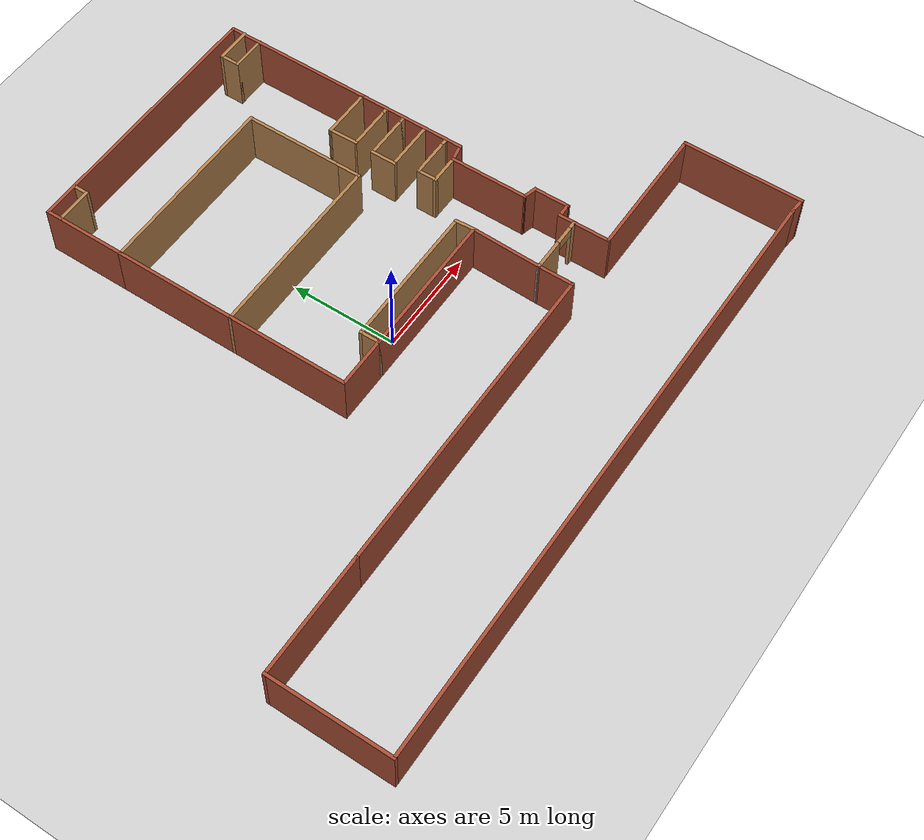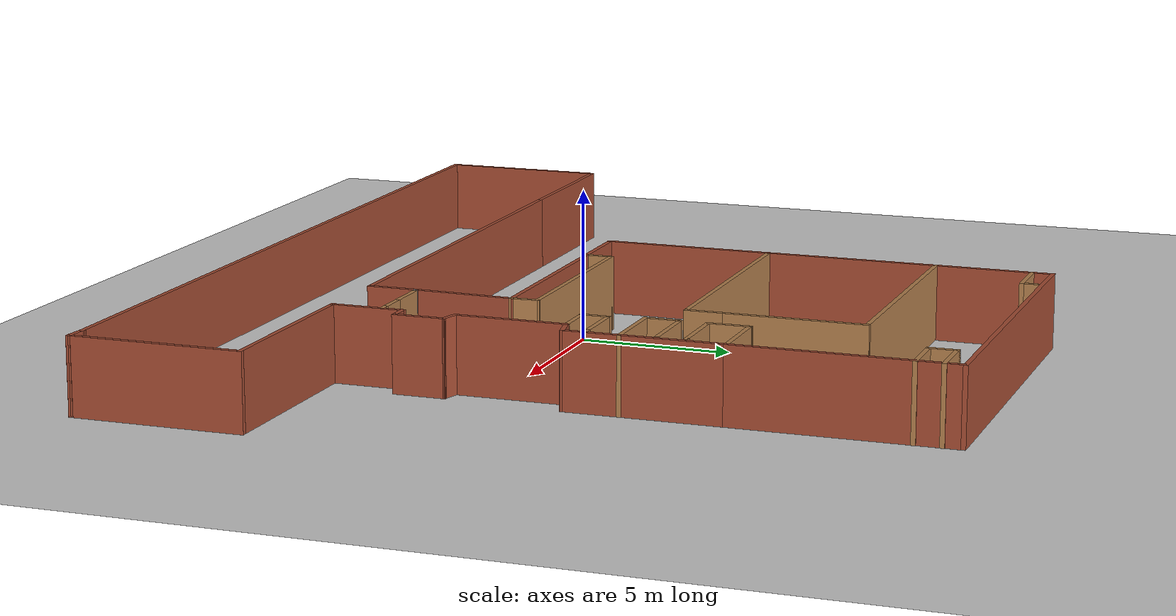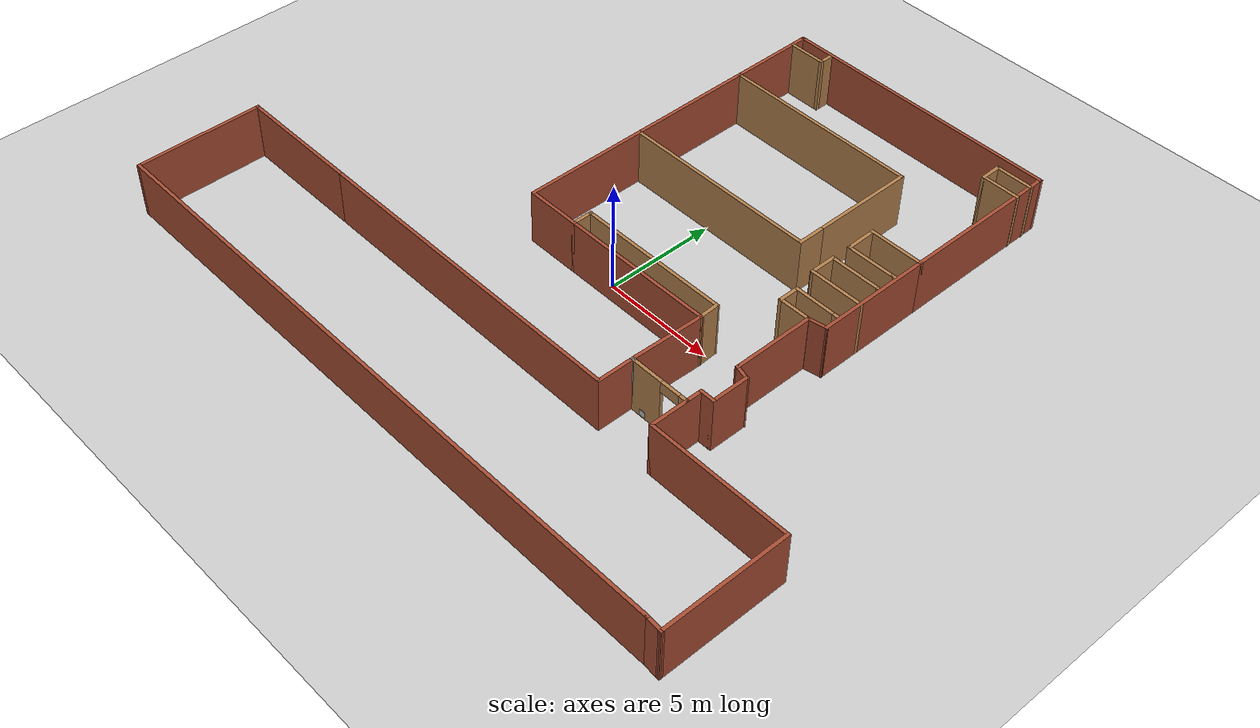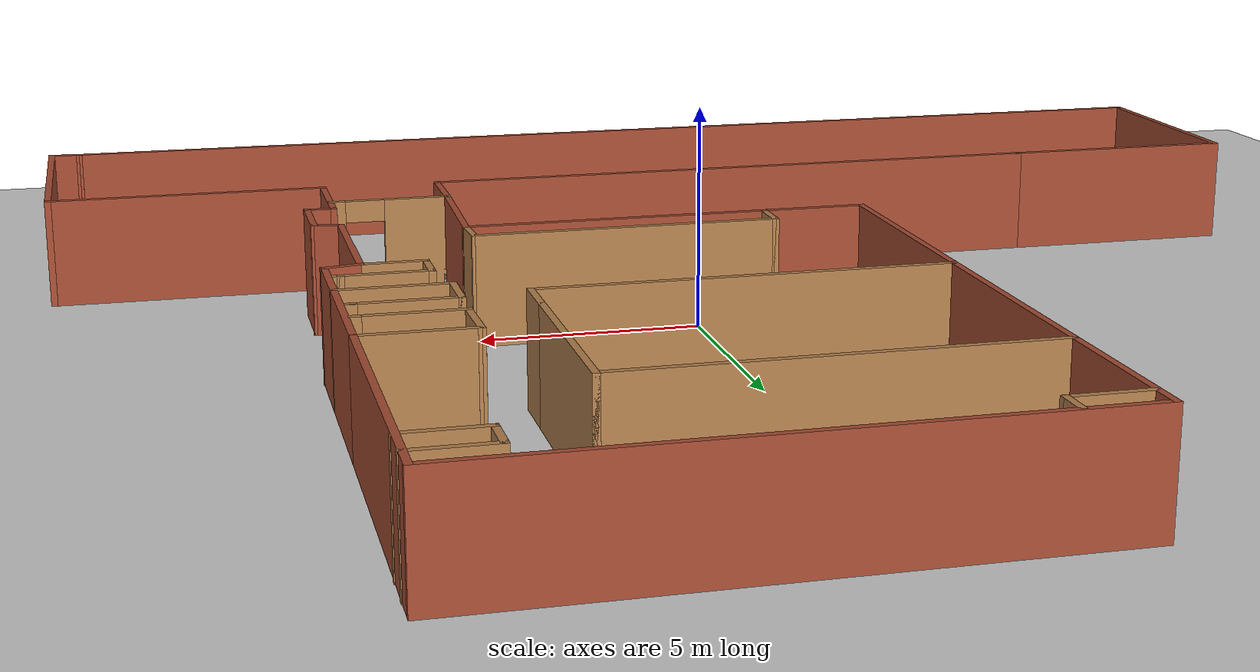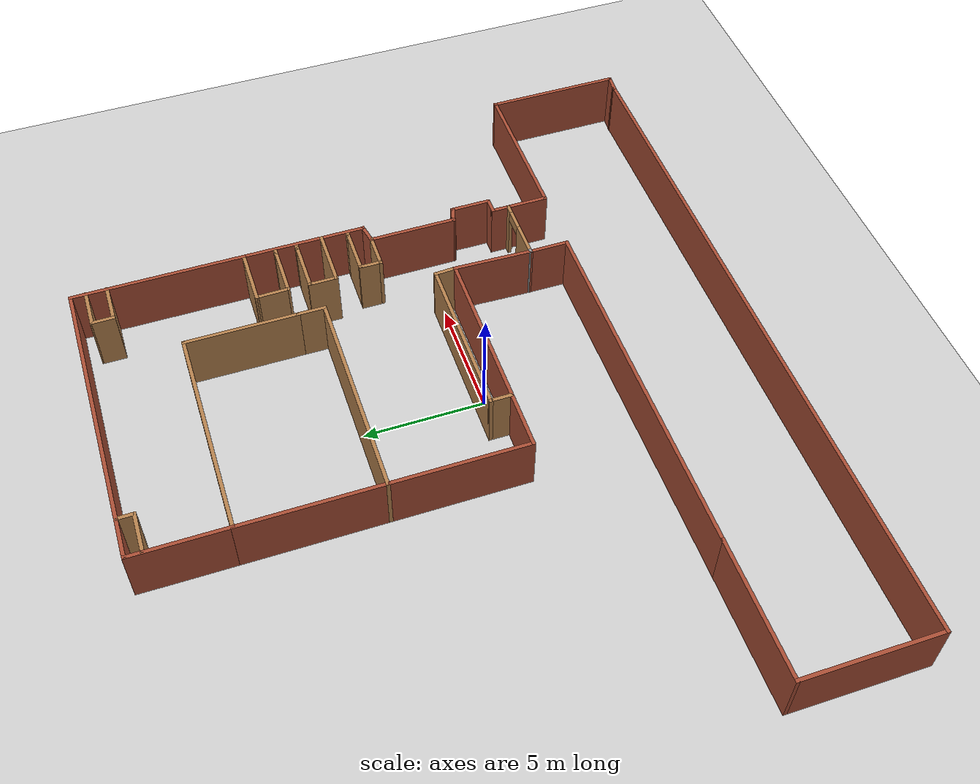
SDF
<sdf version="1.7">
 <world name="default">
  <light name="sun" type="directional">
   <pose>0 0 10 0 -0 0</pose>
   <diffuse>0.8 0.8 0.8 1</diffuse>
   <specular>0.2 0.2 0.2 1</specular>
   <attenuation>
    <range>1000</range>
    <constant>0.9</constant>
    <linear>0.01</linear>
    <quadratic>0.001</quadratic>
   </attenuation>
   <direction>-0.5 0.1 -0.9</direction>
   <spot><inner_angle>0</inner_angle><outer_angle>0</outer_angle><falloff>0</falloff></spot>
  </light>
  <model name="ground_plane">
   <static>1</static>
   <link name="link">
    <collision name="collision">
     <geometry><plane><normal>0 0 1</normal><size>100 100</size></plane></geometry>
     <surface><friction><ode><mu>100</mu><mu2>50</mu2></ode></friction></surface>
    </collision>
    <visual name="visual">
     <cast_shadows>0</cast_shadows>
     <geometry><plane><normal>0 0 1</normal><size>100 100</size></plane></geometry>
     <material>
      <script><uri>file://media/materials/scripts/gazebo.material</uri><name>Gazebo/Grey</name></script>
     </material>
    </visual>
   </link>
  </model>
  <gravity>0 0 -9.8</gravity>
  <magnetic_field>6e-06 2.3e-05 -4.2e-05</magnetic_field>
  <atmosphere type="adiabatic"/>
  <physics type="ode">
   <max_step_size>0.001</max_step_size>
   <real_time_factor>1</real_time_factor>
   <real_time_update_rate>1000</real_time_update_rate>
  </physics>
  <scene><ambient>0.4 0.4 0.4 1</ambient><background>0.7 0.7 0.7 1</background><shadows>1</shadows></scene>
  <spherical_coordinates>
   <surface_model>EARTH_WGS84</surface_model>
   <latitude_deg>0</latitude_deg>
   <longitude_deg>0</longitude_deg>
   <elevation>0</elevation>
   <heading_deg>0</heading_deg>
  </spherical_coordinates>
  <model name="F1L3_1">
   <pose>-0.71829 1.81136 0 0 -0 0</pose>
   <link name="Wall_100">
    <collision name="Wall_100_Collision">
     <geometry><box><size>0.75 0.15 2.5</size></box></geometry>
     <pose>0 0 1.25 0 -0 0</pose>
    </collision>
    <visual name="Wall_100_Visual">
     <pose>0 0 1.25 0 -0 0</pose>
     <geometry><box><size>0.75 0.15 2.5</size></box></geometry>
     <material>
      <script><uri>file://media/materials/scripts/gazebo.material</uri><name>Gazebo/Bricks</name></script>
      <ambient>1 1 1 1</ambient>
     </material>
     <meta><layer>0</layer></meta>
    </visual>
    <pose>8.83686 -4.87473 0 0 -0 0</pose>
   </link>
   <link name="Wall_101">
    <collision name="Wall_101_Collision">
     <geometry><box><size>1.75 0.15 2.5</size></box></geometry>
     <pose>0 0 1.25 0 -0 0</pose>
    </collision>
    <visual name="Wall_101_Visual">
     <pose>0 0 1.25 0 -0 0</pose>
     <geometry><box><size>1.75 0.15 2.5</size></box></geometry>
     <material>
      <script><uri>file://media/materials/scripts/gazebo.material</uri><name>Gazebo/Bricks</name></script>
      <ambient>1 1 1 1</ambient>
     </material>
     <meta><layer>0</layer></meta>
    </visual>
    <pose>9.13686 -4.07473 0 0 -0 1.5708</pose>
   </link>
   <link name="Wall_102">
    <collision name="Wall_102_Collision">
     <geometry><box><size>0.75 0.15 2.5</size></box></geometry>
     <pose>0 0 1.25 0 -0 0</pose>
    </collision>
    <visual name="Wall_102_Visual">
     <pose>0 0 1.25 0 -0 0</pose>
     <geometry><box><size>0.75 0.15 2.5</size></box></geometry>
     <material>
      <script><uri>file://media/materials/scripts/gazebo.material</uri><name>Gazebo/Bricks</name></script>
      <ambient>1 1 1 1</ambient>
     </material>
     <meta><layer>0</layer></meta>
    </visual>
    <pose>8.84708 -3.19708 0 0 -0 2.87979</pose>
   </link>
   <link name="Wall_103">
    <collision name="Wall_103_Collision">
     <geometry><box><size>3.75 0.15 2.5</size></box></geometry>
     <pose>0 0 1.25 0 -0 0</pose>
    </collision>
    <visual name="Wall_103_Visual">
     <pose>0 0 1.25 0 -0 0</pose>
     <geometry><box><size>3.75 0.15 2.5</size></box></geometry>
     <material>
      <script><uri>file://media/materials/scripts/gazebo.material</uri><name>Gazebo/Bricks</name></script>
      <ambient>1 1 1 1</ambient>
     </material>
     <meta><layer>0</layer></meta>
    </visual>
    <pose>8.5573 -1.31944 0 0 -0 1.5708</pose>
   </link>
   <link name="Wall_104">
    <collision name="Wall_104_Collision">
     <geometry><box><size>1.5 0.15 2.5</size></box></geometry>
     <pose>0 0 1.25 0 -0 0</pose>
    </collision>
    <visual name="Wall_104_Visual">
     <pose>0 0 1.25 0 -0 0</pose>
     <geometry><box><size>1.5 0.15 2.5</size></box></geometry>
     <material>
      <script><uri>file://media/materials/scripts/gazebo.material</uri><name>Gazebo/Wood</name></script>
      <ambient>1 1 1 1</ambient>
     </material>
     <meta><layer>0</layer></meta>
    </visual>
    <pose>7.8823 0.480563 0 0 -0 3.14159</pose>
   </link>
   <link name="Wall_105">
    <collision name="Wall_105_Collision">
     <geometry><box><size>1 0.15 2.5</size></box></geometry>
     <pose>0 0 1.25 0 -0 0</pose>
    </collision>
    <visual name="Wall_105_Visual">
     <pose>0 0 1.25 0 -0 0</pose>
     <geometry><box><size>1 0.15 2.5</size></box></geometry>
     <material>
      <script><uri>file://media/materials/scripts/gazebo.material</uri><name>Gazebo/Wood</name></script>
      <ambient>1 1 1 1</ambient>
     </material>
     <meta><layer>0</layer></meta>
    </visual>
    <pose>7.2073 0.905563 0 0 -0 1.5708</pose>
   </link>
   <link name="Wall_106">
    <collision name="Wall_106_Collision">
     <geometry><box><size>2 0.15 2.5</size></box></geometry>
     <pose>0 0 1.25 0 -0 0</pose>
    </collision>
    <visual name="Wall_106_Visual">
     <pose>0 0 1.25 0 -0 0</pose>
     <geometry><box><size>2 0.15 2.5</size></box></geometry>
     <material>
      <script><uri>file://media/materials/scripts/gazebo.material</uri><name>Gazebo/Wood</name></script>
      <ambient>1 1 1 1</ambient>
     </material>
     <meta><layer>0</layer></meta>
    </visual>
    <pose>8.13231 1.33056 0 0 -0 0</pose>
   </link>
   <link name="Wall_108">
    <collision name="Wall_108_Collision">
     <geometry><box><size>2.5 0.15 2.5</size></box></geometry>
     <pose>0 0 1.25 0 -0 0</pose>
    </collision>
    <visual name="Wall_108_Visual">
     <pose>0 0 1.25 0 -0 0</pose>
     <geometry><box><size>2.5 0.15 2.5</size></box></geometry>
     <material>
      <script><uri>file://media/materials/scripts/gazebo.material</uri><name>Gazebo/Wood</name></script>
      <ambient>1 1 1 1</ambient>
     </material>
     <meta><layer>0</layer></meta>
    </visual>
    <pose>8.13231 2.43056 0 0 -0 3.14159</pose>
   </link>
   <link name="Wall_109">
    <collision name="Wall_109_Collision">
     <geometry><box><size>1.25 0.15 2.5</size></box></geometry>
     <pose>0 0 1.25 0 -0 0</pose>
    </collision>
    <visual name="Wall_109_Visual">
     <pose>0 0 1.25 0 -0 0</pose>
     <geometry><box><size>1.25 0.15 2.5</size></box></geometry>
     <material>
      <script><uri>file://media/materials/scripts/gazebo.material</uri><name>Gazebo/Wood</name></script>
      <ambient>1 1 1 1</ambient>
     </material>
     <meta><layer>0</layer></meta>
    </visual>
    <pose>6.9573 2.98056 0 0 -0 1.5708</pose>
   </link>
   <link name="Wall_110">
    <collision name="Wall_110_Collision">
     <geometry><box><size>2.25 0.15 2.5</size></box></geometry>
     <pose>0 0 1.25 0 -0 0</pose>
    </collision>
    <visual name="Wall_110_Visual">
     <pose>0 0 1.25 0 -0 0</pose>
     <geometry><box><size>2.25 0.15 2.5</size></box></geometry>
     <material>
      <script><uri>file://media/materials/scripts/gazebo.material</uri><name>Gazebo/Wood</name></script>
      <ambient>1 1 1 1</ambient>
     </material>
     <meta><layer>0</layer></meta>
    </visual>
    <pose>8.00731 3.53056 0 0 -0 0</pose>
   </link>
   <link name="Wall_112">
    <collision name="Wall_112_Collision">
     <geometry><box><size>2.25 0.15 2.5</size></box></geometry>
     <pose>0 0 1.25 0 -0 0</pose>
    </collision>
    <visual name="Wall_112_Visual">
     <pose>0 0 1.25 0 -0 0</pose>
     <geometry><box><size>2.25 0.15 2.5</size></box></geometry>
     <material>
      <script><uri>file://media/materials/scripts/gazebo.material</uri><name>Gazebo/Wood</name></script>
      <ambient>1 1 1 1</ambient>
     </material>
     <meta><layer>0</layer></meta>
    </visual>
    <pose>8.03044 4.42682 0 0 -0 3.14159</pose>
   </link>
   <link name="Wall_113">
    <collision name="Wall_113_Collision">
     <geometry><box><size>1.43082 0.15 2.5</size></box></geometry>
     <pose>0 0 1.25 0 -0 0</pose>
    </collision>
    <visual name="Wall_113_Visual">
     <pose>0 0 1.25 0 -0 0</pose>
     <geometry><box><size>1.43082 0.15 2.5</size></box></geometry>
     <material>
      <script><uri>file://media/materials/scripts/gazebo.material</uri><name>Gazebo/Wood</name></script>
      <ambient>1 1 1 1</ambient>
     </material>
     <meta><layer>0</layer></meta>
    </visual>
    <pose>6.96887 5.09026 0 0 -0 1.58886</pose>
   </link>
   <link name="Wall_119">
    <collision name="Wall_119_Collision">
     <geometry><box><size>2.5 0.15 2.5</size></box></geometry>
     <pose>0 0 1.25 0 -0 0</pose>
    </collision>
    <visual name="Wall_119_Visual">
     <pose>0 0 1.25 0 -0 0</pose>
     <geometry><box><size>2.5 0.15 2.5</size></box></geometry>
     <material>
      <script><uri>file://media/materials/scripts/gazebo.material</uri><name>Gazebo/Wood</name></script>
      <ambient>1 1 1 1</ambient>
     </material>
     <meta><layer>0</layer></meta>
    </visual>
    <pose>8.13231 5.73056 0 0 -0 0</pose>
   </link>
   <link name="Wall_121">
    <collision name="Wall_121_Collision">
     <geometry><box><size>7.25 0.15 2.5</size></box></geometry>
     <pose>0 0 1.25 0 -0 0</pose>
    </collision>
    <visual name="Wall_121_Visual">
     <pose>0 0 1.25 0 -0 0</pose>
     <geometry><box><size>7.25 0.15 2.5</size></box></geometry>
     <material>
      <script><uri>file://media/materials/scripts/gazebo.material</uri><name>Gazebo/Bricks</name></script>
      <ambient>1 1 1 1</ambient>
     </material>
     <meta><layer>0</layer></meta>
    </visual>
    <pose>9.3073 9.28056 0 0 -0 1.5708</pose>
   </link>
   <link name="Wall_122">
    <collision name="Wall_122_Collision">
     <geometry><box><size>12.75 0.15 2.5</size></box></geometry>
     <pose>0 0 1.25 0 -0 0</pose>
    </collision>
    <visual name="Wall_122_Visual">
     <pose>0 0 1.25 0 -0 0</pose>
     <geometry><box><size>12.75 0.15 2.5</size></box></geometry>
     <material>
      <script><uri>file://media/materials/scripts/gazebo.material</uri><name>Gazebo/Bricks</name></script>
      <ambient>1 1 1 1</ambient>
     </material>
     <meta><layer>0</layer></meta>
    </visual>
    <pose>3.00731 12.8306 0 0 -0 3.14159</pose>
   </link>
   <link name="Wall_123">
    <collision name="Wall_123_Collision">
     <geometry><box><size>4 0.15 2.5</size></box></geometry>
     <pose>0 0 1.25 0 -0 0</pose>
    </collision>
    <visual name="Wall_123_Visual">
     <pose>0 0 1.25 0 -0 0</pose>
     <geometry><box><size>4 0.15 2.5</size></box></geometry>
     <material>
      <script><uri>file://media/materials/scripts/gazebo.material</uri><name>Gazebo/Bricks</name></script>
      <ambient>1 1 1 1</ambient>
     </material>
     <meta><layer>0</layer></meta>
    </visual>
    <pose>-3.2927 10.9056 0 0 -0 -1.5708</pose>
   </link>
   <link name="Wall_124">
    <collision name="Wall_124_Collision">
     <geometry><box><size>9 0.15 2.5</size></box></geometry>
     <pose>0 0 1.25 0 -0 0</pose>
    </collision>
    <visual name="Wall_124_Visual">
     <pose>0 0 1.25 0 -0 0</pose>
     <geometry><box><size>9 0.15 2.5</size></box></geometry>
     <material>
      <script><uri>file://media/materials/scripts/gazebo.material</uri><name>Gazebo/Wood</name></script>
      <ambient>1 1 1 1</ambient>
     </material>
     <meta><layer>0</layer></meta>
    </visual>
    <pose>1.1323 8.98056 0 0 -0 0</pose>
   </link>
   <link name="Wall_125">
    <collision name="Wall_125_Collision">
     <geometry><box><size>4.75 0.15 2.5</size></box></geometry>
     <pose>0 0 1.25 0 -0 0</pose>
    </collision>
    <visual name="Wall_125_Visual">
     <pose>0 0 1.25 0 -0 0</pose>
     <geometry><box><size>4.75 0.15 2.5</size></box></geometry>
     <material>
      <script><uri>file://media/materials/scripts/gazebo.material</uri><name>Gazebo/Wood</name></script>
      <ambient>1 1 1 1</ambient>
     </material>
     <meta><layer>0</layer></meta>
    </visual>
    <pose>5.55731 6.68056 0 0 -0 -1.5708</pose>
   </link>
   <link name="Wall_127">
    <collision name="Wall_127_Collision">
     <geometry><box><size>1.25 0.15 2.5</size></box></geometry>
     <pose>0 0 1.25 0 -0 0</pose>
    </collision>
    <visual name="Wall_127_Visual">
     <pose>0 0 1.25 0 -0 0</pose>
     <geometry><box><size>1.25 0.15 2.5</size></box></geometry>
     <material>
      <script><uri>file://media/materials/scripts/gazebo.material</uri><name>Gazebo/Wood</name></script>
      <ambient>1 1 1 1</ambient>
     </material>
     <meta><layer>0</layer></meta>
    </visual>
    <pose>5.55731 3.83056 0 0 -0 -1.5708</pose>
   </link>
   <link name="Wall_128">
    <collision name="Wall_128_Collision">
     <geometry><box><size>9 0.15 2.5</size></box></geometry>
     <pose>0 0 1.25 0 -0 0</pose>
    </collision>
    <visual name="Wall_128_Visual">
     <pose>0 0 1.25 0 -0 0</pose>
     <geometry><box><size>9 0.15 2.5</size></box></geometry>
     <material>
      <script><uri>file://media/materials/scripts/gazebo.material</uri><name>Gazebo/Wood</name></script>
      <ambient>1 1 1 1</ambient>
     </material>
     <meta><layer>0</layer></meta>
    </visual>
    <pose>1.1323 3.28056 0 0 -0 3.14159</pose>
   </link>
   <link name="Wall_129">
    <collision name="Wall_129_Collision">
     <geometry><box><size>5.75 0.15 2.5</size></box></geometry>
     <pose>0 0 1.25 0 -0 0</pose>
    </collision>
    <visual name="Wall_129_Visual">
     <pose>0 0 1.25 0 -0 0</pose>
     <geometry><box><size>5.75 0.15 2.5</size></box></geometry>
     <material>
      <script><uri>file://media/materials/scripts/gazebo.material</uri><name>Gazebo/Bricks</name></script>
      <ambient>1 1 1 1</ambient>
     </material>
     <meta><layer>0</layer></meta>
    </visual>
    <pose>-3.2927 0.480563 0 0 -0 -1.5708</pose>
   </link>
   <link name="Wall_130">
    <collision name="Wall_130_Collision">
     <geometry><box><size>2.5 0.15 2.5</size></box></geometry>
     <pose>0 0 1.25 0 -0 0</pose>
    </collision>
    <visual name="Wall_130_Visual">
     <pose>0 0 1.25 0 -0 0</pose>
     <geometry><box><size>2.5 0.15 2.5</size></box></geometry>
     <material>
      <script><uri>file://media/materials/scripts/gazebo.material</uri><name>Gazebo/Bricks</name></script>
      <ambient>1 1 1 1</ambient>
     </material>
     <meta><layer>0</layer></meta>
    </visual>
    <pose>-2.11769 -2.31944 0 0 -0 0</pose>
   </link>
   <link name="Wall_131">
    <collision name="Wall_131_Collision">
     <geometry><box><size>1 0.15 2.5</size></box></geometry>
     <pose>0 0 1.25 0 -0 0</pose>
    </collision>
    <visual name="Wall_131_Visual">
     <pose>0 0 1.25 0 -0 0</pose>
     <geometry><box><size>1 0.15 2.5</size></box></geometry>
     <material>
      <script><uri>file://media/materials/scripts/gazebo.material</uri><name>Gazebo/Wood</name></script>
      <ambient>1 1 1 1</ambient>
     </material>
     <meta><layer>0</layer></meta>
    </visual>
    <pose>-0.942695 -1.89444 0 0 -0 1.5708</pose>
   </link>
   <link name="Wall_132">
    <collision name="Wall_132_Collision">
     <geometry><box><size>6.95374 0.15 2.5</size></box></geometry>
     <pose>0 0 1.25 0 -0 0</pose>
    </collision>
    <visual name="Wall_132_Visual">
     <pose>0 0 1.25 0 -0 0</pose>
     <geometry><box><size>6.95374 0.15 2.5</size></box></geometry>
     <material>
      <script><uri>file://media/materials/scripts/gazebo.material</uri><name>Gazebo/Wood</name></script>
      <ambient>1 1 1 1</ambient>
     </material>
     <meta><layer>0</layer></meta>
    </visual>
    <pose>2.45917 -1.46944 0 0 -0 0</pose>
   </link>
   <link name="Wall_135">
    <pose>7.18417 -5.56944 0 0 -0 0</pose>
    <visual name="Wall_135_Visual_0">
     <pose>-0.642786 0 1.25 0 -0 0</pose>
     <geometry><box><size>1.51069 0.15 2.5</size></box></geometry>
     <material>
      <script><uri>file://media/materials/scripts/gazebo.material</uri><name>Gazebo/Wood</name></script>
      <ambient>1 1 1 1</ambient>
     </material>
     <meta><layer>0</layer></meta>
    </visual>
    <collision name="Wall_135_Collision_0">
     <geometry><box><size>1.51069 0.15 2.5</size></box></geometry>
     <pose>-0.642786 0 1.25 0 -0 0</pose>
    </collision>
    <visual name="Wall_135_Visual_1">
     <pose>1.20535 0 1.25 0 -0 0</pose>
     <geometry><box><size>0.385571 0.15 2.5</size></box></geometry>
     <material>
      <script><uri>file://media/materials/scripts/gazebo.material</uri><name>Gazebo/Wood</name></script>
      <ambient>1 1 1 1</ambient>
     </material>
     <meta><layer>0</layer></meta>
    </visual>
    <collision name="Wall_135_Collision_1">
     <geometry><box><size>0.385571 0.15 2.5</size></box></geometry>
     <pose>1.20535 0 1.25 0 -0 0</pose>
    </collision>
    <visual name="Wall_135_Visual_2">
     <pose>0.56256 0 2.25 0 -0 0</pose>
     <geometry><box><size>0.9 0.15 0.5</size></box></geometry>
     <material>
      <script><uri>file://media/materials/scripts/gazebo.material</uri><name>Gazebo/Wood</name></script>
      <ambient>1 1 1 1</ambient>
     </material>
     <meta><layer>0</layer></meta>
    </visual>
    <collision name="Wall_135_Collision_2">
     <geometry><box><size>0.9 0.15 0.5</size></box></geometry>
     <pose>0.56256 0 2.25 0 -0 0</pose>
    </collision>
   </link>
   <link name="Wall_137">
    <collision name="Wall_137_Collision">
     <geometry><box><size>0.203739 0.15 2.5</size></box></geometry>
     <pose>0 0 1.25 0 -0 0</pose>
    </collision>
    <visual name="Wall_137_Visual">
     <pose>0 0 1.25 0 -0 0</pose>
     <geometry><box><size>0.203739 0.15 2.5</size></box></geometry>
     <material>
      <script><uri>file://media/materials/scripts/gazebo.material</uri><name>Gazebo/Grey</name></script>
      <ambient>1 1 1 1</ambient>
     </material>
     <meta><layer>0</layer></meta>
    </visual>
    <pose>5.83417 -5.56944 0 0 -0 3.14159</pose>
   </link>
   <link name="Wall_138">
    <collision name="Wall_138_Collision">
     <geometry><box><size>1.75 0.15 2.5</size></box></geometry>
     <pose>0 0 1.25 0 -0 0</pose>
    </collision>
    <visual name="Wall_138_Visual">
     <pose>0 0 1.25 0 -0 0</pose>
     <geometry><box><size>1.75 0.15 2.5</size></box></geometry>
     <material>
      <script><uri>file://media/materials/scripts/gazebo.material</uri><name>Gazebo/Bricks</name></script>
      <ambient>1 1 1 1</ambient>
     </material>
     <meta><layer>0</layer></meta>
    </visual>
    <pose>5.80731 -6.36944 0 0 -0 -1.5708</pose>
   </link>
   <link name="Wall_139">
    <collision name="Wall_139_Collision">
     <geometry><box><size>15.25 0.15 2.5</size></box></geometry>
     <pose>0 0 1.25 0 -0 0</pose>
    </collision>
    <visual name="Wall_139_Visual">
     <pose>0 0 1.25 0 -0 0</pose>
     <geometry><box><size>15.25 0.15 2.5</size></box></geometry>
     <material>
      <script><uri>file://media/materials/scripts/gazebo.material</uri><name>Gazebo/Bricks</name></script>
      <ambient>1 1 1 1</ambient>
     </material>
     <meta><layer>0</layer></meta>
    </visual>
    <pose>-1.7427 -7.16944 0 0 -0 3.14159</pose>
   </link>
   <link name="Wall_141">
    <collision name="Wall_141_Collision">
     <geometry><box><size>5.75 0.15 2.5</size></box></geometry>
     <pose>0 0 1.25 0 -0 0</pose>
    </collision>
    <visual name="Wall_141_Visual">
     <pose>0 0 1.25 0 -0 0</pose>
     <geometry><box><size>5.75 0.15 2.5</size></box></geometry>
     <material>
      <script><uri>file://media/materials/scripts/gazebo.material</uri><name>Gazebo/Bricks</name></script>
      <ambient>1 1 1 1</ambient>
     </material>
     <meta><layer>0</layer></meta>
    </visual>
    <pose>-12.0927 -7.16944 0 0 -0 3.14159</pose>
   </link>
   <link name="Wall_142">
    <collision name="Wall_142_Collision">
     <geometry><box><size>5.75 0.15 2.5</size></box></geometry>
     <pose>0 0 1.25 0 -0 0</pose>
    </collision>
    <visual name="Wall_142_Visual">
     <pose>0 0 1.25 0 -0 0</pose>
     <geometry><box><size>5.75 0.15 2.5</size></box></geometry>
     <material>
      <script><uri>file://media/materials/scripts/gazebo.material</uri><name>Gazebo/Bricks</name></script>
      <ambient>1 1 1 1</ambient>
     </material>
     <meta><layer>0</layer></meta>
    </visual>
    <pose>-14.8927 -9.96944 0 0 -0 -1.5708</pose>
   </link>
   <link name="Wall_143">
    <collision name="Wall_143_Collision">
     <geometry><box><size>29.25 0.15 2.5</size></box></geometry>
     <pose>0 0 1.25 0 -0 0</pose>
    </collision>
    <visual name="Wall_143_Visual">
     <pose>0 0 1.25 0 -0 0</pose>
     <geometry><box><size>29.25 0.15 2.5</size></box></geometry>
     <material>
      <script><uri>file://media/materials/scripts/gazebo.material</uri><name>Gazebo/Bricks</name></script>
      <ambient>1 1 1 1</ambient>
     </material>
     <meta><layer>0</layer></meta>
    </visual>
    <pose>-0.342695 -12.7694 0 0 -0 0</pose>
   </link>
   <link name="Wall_145">
    <collision name="Wall_145_Collision">
     <geometry><box><size>6.5 0.15 2.5</size></box></geometry>
     <pose>0 0 1.25 0 -0 0</pose>
    </collision>
    <visual name="Wall_145_Visual">
     <pose>0 0 1.25 0 -0 0</pose>
     <geometry><box><size>6.5 0.15 2.5</size></box></geometry>
     <material>
      <script><uri>file://media/materials/scripts/gazebo.material</uri><name>Gazebo/Bricks</name></script>
      <ambient>1 1 1 1</ambient>
     </material>
     <meta><layer>0</layer></meta>
    </visual>
    <pose>11.7119 -7.22473 0 0 -0 0</pose>
   </link>
   <link name="Wall_146">
    <collision name="Wall_146_Collision">
     <geometry><box><size>5.75 0.15 2.5</size></box></geometry>
     <pose>0 0 1.25 0 -0 0</pose>
    </collision>
    <visual name="Wall_146_Visual">
     <pose>0 0 1.25 0 -0 0</pose>
     <geometry><box><size>5.75 0.15 2.5</size></box></geometry>
     <material>
      <script><uri>file://media/materials/scripts/gazebo.material</uri><name>Gazebo/Bricks</name></script>
      <ambient>1 1 1 1</ambient>
     </material>
     <meta><layer>0</layer></meta>
    </visual>
    <pose>14.8869 -10.0247 0 0 -0 -1.5708</pose>
   </link>
   <link name="Wall_147">
    <collision name="Wall_147_Collision">
     <geometry><box><size>0.831801 0.15 2.5</size></box></geometry>
     <pose>0 0 1.25 0 -0 0</pose>
    </collision>
    <visual name="Wall_147_Visual">
     <pose>0 0 1.25 0 -0 0</pose>
     <geometry><box><size>0.831801 0.15 2.5</size></box></geometry>
     <material>
      <script><uri>file://media/materials/scripts/gazebo.material</uri><name>Gazebo/Bricks</name></script>
      <ambient>1 1 1 1</ambient>
     </material>
     <meta><layer>0</layer></meta>
    </visual>
    <pose>14.5471 -12.7971 0 0 -0 3.06041</pose>
   </link>
   <link name="Wall_149">
    <collision name="Wall_149_Collision">
     <geometry><box><size>1.75 0.15 2.5</size></box></geometry>
     <pose>0 0 1.25 0 -0 0</pose>
    </collision>
    <visual name="Wall_149_Visual">
     <pose>0 0 1.25 0 -0 0</pose>
     <geometry><box><size>1.75 0.15 2.5</size></box></geometry>
     <material>
      <script><uri>file://media/materials/scripts/gazebo.material</uri><name>Gazebo/Wood</name></script>
      <ambient>1 1 1 1</ambient>
     </material>
     <meta><layer>0</layer></meta>
    </visual>
    <pose>8.5238 12.2169 0 0 -0 3.14159</pose>
   </link>
   <link name="Wall_150">
    <collision name="Wall_150_Collision">
     <geometry><box><size>1 0.15 2.5</size></box></geometry>
     <pose>0 0 1.25 0 -0 0</pose>
    </collision>
    <visual name="Wall_150_Visual">
     <pose>0 0 1.25 0 -0 0</pose>
     <geometry><box><size>1 0.15 2.5</size></box></geometry>
     <material>
      <script><uri>file://media/materials/scripts/gazebo.material</uri><name>Gazebo/Wood</name></script>
      <ambient>1 1 1 1</ambient>
     </material>
     <meta><layer>0</layer></meta>
    </visual>
    <pose>7.7238 11.7919 0 0 -0 -1.5708</pose>
   </link>
   <link name="Wall_151">
    <collision name="Wall_151_Collision">
     <geometry><box><size>1.75 0.15 2.5</size></box></geometry>
     <pose>0 0 1.25 0 -0 0</pose>
    </collision>
    <visual name="Wall_151_Visual">
     <pose>0 0 1.25 0 -0 0</pose>
     <geometry><box><size>1.75 0.15 2.5</size></box></geometry>
     <material>
      <script><uri>file://media/materials/scripts/gazebo.material</uri><name>Gazebo/Wood</name></script>
      <ambient>1 1 1 1</ambient>
     </material>
     <meta><layer>0</layer></meta>
    </visual>
    <pose>8.5238 11.3669 0 0 -0 0</pose>
   </link>
   <link name="Wall_153">
    <collision name="Wall_153_Collision">
     <geometry><box><size>0.75 0.15 2.5</size></box></geometry>
     <pose>0 0 1.25 0 -0 0</pose>
    </collision>
    <visual name="Wall_153_Visual">
     <pose>0 0 1.25 0 -0 0</pose>
     <geometry><box><size>0.75 0.15 2.5</size></box></geometry>
     <material>
      <script><uri>file://media/materials/scripts/gazebo.material</uri><name>Gazebo/Wood</name></script>
      <ambient>1 1 1 1</ambient>
     </material>
     <meta><layer>0</layer></meta>
    </visual>
    <pose>-1.64011 12.472 0 0 -0 -1.5708</pose>
   </link>
   <link name="Wall_154">
    <collision name="Wall_154_Collision">
     <geometry><box><size>1.75 0.15 2.5</size></box></geometry>
     <pose>0 0 1.25 0 -0 0</pose>
    </collision>
    <visual name="Wall_154_Visual">
     <pose>0 0 1.25 0 -0 0</pose>
     <geometry><box><size>1.75 0.15 2.5</size></box></geometry>
     <material>
      <script><uri>file://media/materials/scripts/gazebo.material</uri><name>Gazebo/Wood</name></script>
      <ambient>1 1 1 1</ambient>
     </material>
     <meta><layer>0</layer></meta>
    </visual>
    <pose>-2.44011 12.1721 0 0 -0 3.14159</pose>
   </link>
   <link name="Wall_156">
    <collision name="Wall_156_Collision">
     <geometry><box><size>5.85 0.15 2.5</size></box></geometry>
     <pose>0 0 1.25 0 -0 0</pose>
    </collision>
    <visual name="Wall_156_Visual">
     <pose>0 0 1.25 0 -0 0</pose>
     <geometry><box><size>5.85 0.15 2.5</size></box></geometry>
     <material>
      <script><uri>file://media/materials/scripts/gazebo.material</uri><name>Gazebo/Bricks</name></script>
      <ambient>1 1 1 1</ambient>
     </material>
     <meta><layer>0</layer></meta>
    </visual>
    <pose>-3.2927 6.13056 0 0 -0 1.5708</pose>
   </link>
   <link name="Wall_158">
    <collision name="Wall_158_Collision">
     <geometry><box><size>5.25 0.15 2.5</size></box></geometry>
     <pose>0 0 1.25 0 -0 0</pose>
    </collision>
    <visual name="Wall_158_Visual">
     <pose>0 0 1.25 0 -0 0</pose>
     <geometry><box><size>5.25 0.15 2.5</size></box></geometry>
     <material>
      <script><uri>file://media/materials/scripts/gazebo.material</uri><name>Gazebo/Bricks</name></script>
      <ambient>1 1 1 1</ambient>
     </material>
     <meta><layer>0</layer></meta>
    </visual>
    <pose>9.3073 3.18056 0 0 -0 -1.5708</pose>
   </link>
   <link name="Wall_159">
    <collision name="Wall_159_Collision">
     <geometry><box><size>0.914853 0.15 2.5</size></box></geometry>
     <pose>0 0 1.25 0 -0 0</pose>
    </collision>
    <visual name="Wall_159_Visual">
     <pose>0 0 1.25 0 -0 0</pose>
     <geometry><box><size>0.914853 0.15 2.5</size></box></geometry>
     <material>
      <script><uri>file://media/materials/scripts/gazebo.material</uri><name>Gazebo/Bricks</name></script>
      <ambient>1 1 1 1</ambient>
     </material>
     <meta><layer>0</layer></meta>
    </visual>
    <pose>8.9323 0.555563 0 0 -0 -2.9442</pose>
   </link>
   <link name="Wall_161">
    <collision name="Wall_161_Collision">
     <geometry><box><size>0.25 0.15 2.5</size></box></geometry>
     <pose>0 0 1.25 0 -0 0</pose>
    </collision>
    <visual name="Wall_161_Visual">
     <pose>0 0 1.25 0 -0 0</pose>
     <geometry><box><size>0.25 0.15 2.5</size></box></geometry>
     <material>
      <script><uri>file://media/materials/scripts/gazebo.material</uri><name>Gazebo/Wood</name></script>
      <ambient>1 1 1 1</ambient>
     </material>
     <meta><layer>0</layer></meta>
    </visual>
    <pose>9.13044 4.42682 0 0 -0 0</pose>
   </link>
   <link name="Wall_164">
    <collision name="Wall_164_Collision">
     <geometry><box><size>0.25 0.15 2.5</size></box></geometry>
     <pose>0 0 1.25 0 -0 0</pose>
    </collision>
    <visual name="Wall_164_Visual">
     <pose>0 0 1.25 0 -0 0</pose>
     <geometry><box><size>0.25 0.15 2.5</size></box></geometry>
     <material>
      <script><uri>file://media/materials/scripts/gazebo.material</uri><name>Gazebo/Wood</name></script>
      <ambient>1 1 1 1</ambient>
     </material>
     <meta><layer>0</layer></meta>
    </visual>
    <pose>9.10731 1.33056 0 0 -0 0</pose>
   </link>
   <link name="Wall_166">
    <collision name="Wall_166_Collision">
     <geometry><box><size>0.25 0.15 2.5</size></box></geometry>
     <pose>0 0 1.25 0 -0 0</pose>
    </collision>
    <visual name="Wall_166_Visual">
     <pose>0 0 1.25 0 -0 0</pose>
     <geometry><box><size>0.25 0.15 2.5</size></box></geometry>
     <material>
      <script><uri>file://media/materials/scripts/gazebo.material</uri><name>Gazebo/Wood</name></script>
      <ambient>1 1 1 1</ambient>
     </material>
     <meta><layer>0</layer></meta>
    </visual>
    <pose>9.10731 3.53056 0 0 -0 0</pose>
   </link>
   <link name="Wall_168">
    <collision name="Wall_168_Collision">
     <geometry><box><size>7 0.15 2.5</size></box></geometry>
     <pose>0 0 1.25 0 -0 0</pose>
    </collision>
    <visual name="Wall_168_Visual">
     <pose>0 0 1.25 0 -0 0</pose>
     <geometry><box><size>7 0.15 2.5</size></box></geometry>
     <material>
      <script><uri>file://media/materials/scripts/gazebo.material</uri><name>Gazebo/Bricks</name></script>
      <ambient>1 1 1 1</ambient>
     </material>
     <meta><layer>0</layer></meta>
    </visual>
    <pose>2.48231 -2.31944 0 0 -0 0</pose>
   </link>
   <link name="Wall_170">
    <collision name="Wall_170_Collision">
     <geometry><box><size>3.40154 0.15 2.5</size></box></geometry>
     <pose>0 0 1.25 0 -0 0</pose>
    </collision>
    <visual name="Wall_170_Visual">
     <pose>0 0 1.25 0 -0 0</pose>
     <geometry><box><size>3.40154 0.15 2.5</size></box></geometry>
     <material>
      <script><uri>file://media/materials/scripts/gazebo.material</uri><name>Gazebo/Bricks</name></script>
      <ambient>1 1 1 1</ambient>
     </material>
     <meta><layer>0</layer></meta>
    </visual>
    <pose>5.85731 -3.94444 0 0 -0 -1.60156</pose>
   </link>
   <link name="Wall_172">
    <collision name="Wall_172_Collision">
     <geometry><box><size>1.00126 0.15 2.5</size></box></geometry>
     <pose>0 0 1.25 0 -0 0</pose>
    </collision>
    <visual name="Wall_172_Visual">
     <pose>0 0 1.25 0 -0 0</pose>
     <geometry><box><size>1.00126 0.15 2.5</size></box></geometry>
     <material>
      <script><uri>file://media/materials/scripts/gazebo.material</uri><name>Gazebo/Wood</name></script>
      <ambient>1 1 1 1</ambient>
     </material>
     <meta><layer>0</layer></meta>
    </visual>
    <pose>5.88417 -1.89444 0 0 -0 1.62517</pose>
   </link>
   <link name="Wall_99">
    <collision name="Wall_99_Collision">
     <geometry><box><size>2.5 0.15 2.5</size></box></geometry>
     <pose>0 0 1.25 0 -0 0</pose>
    </collision>
    <visual name="Wall_99_Visual">
     <pose>0 0 1.25 0 -0 0</pose>
     <geometry><box><size>2.5 0.15 2.5</size></box></geometry>
     <material>
      <script><uri>file://media/materials/scripts/gazebo.material</uri><name>Gazebo/Bricks</name></script>
      <ambient>1 1 1 1</ambient>
     </material>
     <meta><layer>0</layer></meta>
    </visual>
    <pose>8.53686 -6.04973 0 0 -0 1.5708</pose>
   </link>
   <static>1</static>
  </model>
  <model name="marker1">
   <static>1</static>
   <link name="link">
    <visual name="visual">
     <cast_shadows>0</cast_shadows>
     <geometry><box><size>0.3 0.01 0.3</size></box></geometry>
     <material>
      <script>
       <uri>model://gazebo_models/ar_tags/model/marker1/materials/scripts</uri>
       <name>Gazebo/ArUco1</name>
      </script>
     </material>
    </visual>
   </link>
   <pose>5.70518 -3.82874 0.185077 0 -0 0</pose>
  </model>
  <model name="marker0">
   <static>1</static>
   <link name="link">
    <visual name="visual">
     <cast_shadows>0</cast_shadows>
     <geometry><box><size>0.3 0.01 0.3</size></box></geometry>
     <material>
      <script>
       <uri>model://gazebo_models/ar_tags/model/marker0/materials/scripts</uri>
       <name>Gazebo/ArUco0</name>
      </script>
     </material>
    </visual>
   </link>
   <pose>5.70467 -3.83058 0.189983 0 -0 0</pose>
  </model>
  <model name="marker2">
   <static>1</static>
   <link name="link">
    <visual name="visual">
     <cast_shadows>0</cast_shadows>
     <geometry><box><size>0.3 0.01 0.3</size></box></geometry>
     <material>
      <script>
       <uri>model://gazebo_models/ar_tags/model/marker2/materials/scripts</uri>
       <name>Gazebo/ArUco2</name>
      </script>
     </material>
    </visual>
   </link>
   <pose>5.70629 -3.82908 0.191884 0 -0 0</pose>
  </model>
 </world>
</sdf>
